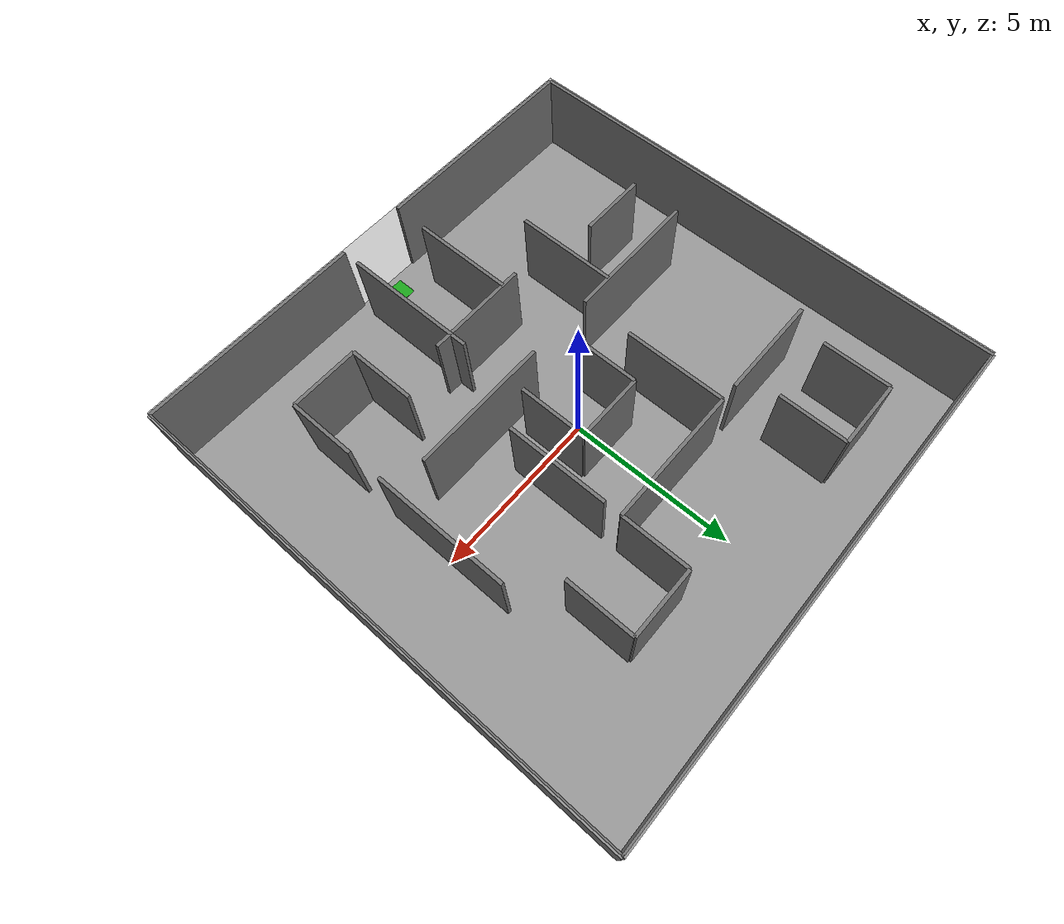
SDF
<?xml version="1.0" ?>

<sdf version="1.9">

<world name="nidar_airmouse_arena">

    <gravity>0 0 -9.81</gravity>

    <plugin
        filename="gz-sim-physics-system"
        name="gz::sim::systems::Physics"/>

    <plugin
        filename="gz-sim-user-commands-system"
        name="gz::sim::systems::UserCommands"/>

    <plugin
        filename="gz-sim-scene-broadcaster-system"
        name="gz::sim::systems::SceneBroadcaster"/>

    <light type="directional" name="sun">
        <pose>0 0 10 0 0 0</pose>
        <cast_shadows>true</cast_shadows>
        <direction>-0.3 0.2 -1.0</direction>
    </light>

    <!-- Ground -->
    <model name="ground">
        <static>true</static>

        <link name="link">

            <collision name="collision">
                <geometry>
                    <box>
                        <size>15 15 0.1</size>
                    </box>
                </geometry>
            </collision>

            <visual name="visual">
                <geometry>
                    <box>
                        <size>15 15 0.1</size>
                    </box>
                </geometry>
            </visual>

        </link>

        <pose>0 0 -0.05 0 0 0</pose>
    </model>

    <model name="outer_wall_north">
        <static>true</static>

        <pose>0 7.5 1.25 0 0 0</pose>

        <link name="link">

            <collision name="collision">
                <geometry>
                    <box>
                        <size>15 0.1 2.5</size>
                    </box>
                </geometry>
            </collision>

            <visual name="visual">
                <geometry>
                    <box>
                        <size>15 0.1 2.5</size>
                    </box>
                </geometry>

                <material>
                    <ambient>0.45 0.45 0.45 1</ambient>
                    <diffuse>0.55 0.55 0.55 1</diffuse>
                </material>
            </visual>

        </link>
    </model>

    <model name="outer_wall_west">
        <static>true</static>

        <pose>-7.5 0 1.25 0 0 0</pose>

        <link name="link">

            <collision name="collision">
                <geometry>
                    <box>
                        <size>0.1 15 2.5</size>
                    </box>
                </geometry>
            </collision>

            <visual name="visual">
                <geometry>
                    <box>
                        <size>0.1 15 2.5</size>
                    </box>
                </geometry>

                <material>
                    <ambient>0.45 0.45 0.45 1</ambient>
                    <diffuse>0.55 0.55 0.55 1</diffuse>
                </material>
            </visual>

        </link>
    </model>

    <model name="outer_wall_east">
        <static>true</static>

        <pose>7.5 0 1.25 0 0 0</pose>

        <link name="link">

            <collision name="collision">
                <geometry>
                    <box>
                        <size>0.1 15 2.5</size>
                    </box>
                </geometry>
            </collision>

            <visual name="visual">
                <geometry>
                    <box>
                        <size>0.1 15 2.5</size>
                    </box>
                </geometry>

                <material>
                    <ambient>0.45 0.45 0.45 1</ambient>
                    <diffuse>0.55 0.55 0.55 1</diffuse>
                </material>
            </visual>

        </link>
    </model>

    <model name="outer_wall_south_left">
        <static>true</static>

        <pose>-4.25 -7.5 1.25 0 0 0</pose>

        <link name="link">

            <collision name="collision">
                <geometry>
                    <box>
                        <size>6.5 0.1 2.5</size>
                    </box>
                </geometry>
            </collision>

            <visual name="visual">
                <geometry>
                    <box>
                        <size>6.5 0.1 2.5</size>
                    </box>
                </geometry>

                <material>
                    <ambient>0.45 0.45 0.45 1</ambient>
                    <diffuse>0.55 0.55 0.55 1</diffuse>
                </material>
            </visual>

        </link>
    </model>

    <model name="outer_wall_south_right">
        <static>true</static>

        <pose>4.25 -7.5 1.25 0 0 0</pose>

        <link name="link">

            <collision name="collision">
                <geometry>
                    <box>
                        <size>6.5 0.1 2.5</size>
                    </box>
                </geometry>
            </collision>

            <visual name="visual">
                <geometry>
                    <box>
                        <size>6.5 0.1 2.5</size>
                    </box>
                </geometry>

                <material>
                    <ambient>0.45 0.45 0.45 1</ambient>
                    <diffuse>0.55 0.55 0.55 1</diffuse>
                </material>
            </visual>

        </link>
    </model>

    <model name="r1_top">
        <static>true</static>

        <pose>-4 6 1.25 0 0 0</pose>

        <link name="link">

            <collision name="collision">
                <geometry>
                    <box>
                        <size>2 0.1 2.5</size>
                    </box>
                </geometry>
            </collision>

            <visual name="visual">
                <geometry>
                    <box>
                        <size>2 0.1 2.5</size>
                    </box>
                </geometry>

                <material>
                    <ambient>0.45 0.45 0.45 1</ambient>
                    <diffuse>0.55 0.55 0.55 1</diffuse>
                </material>
            </visual>

        </link>
    </model>

    <model name="r1_left">
        <static>true</static>

        <pose>-5 5 1.25 0 0 0</pose>

        <link name="link">

            <collision name="collision">
                <geometry>
                    <box>
                        <size>0.1 2 2.5</size>
                    </box>
                </geometry>
            </collision>

            <visual name="visual">
                <geometry>
                    <box>
                        <size>0.1 2 2.5</size>
                    </box>
                </geometry>

                <material>
                    <ambient>0.45 0.45 0.45 1</ambient>
                    <diffuse>0.55 0.55 0.55 1</diffuse>
                </material>
            </visual>

        </link>
    </model>

    <model name="r1_right">
        <static>true</static>

        <pose>-3 5 1.25 0 0 0</pose>

        <link name="link">

            <collision name="collision">
                <geometry>
                    <box>
                        <size>0.1 2 2.5</size>
                    </box>
                </geometry>
            </collision>

            <visual name="visual">
                <geometry>
                    <box>
                        <size>0.1 2 2.5</size>
                    </box>
                </geometry>

                <material>
                    <ambient>0.45 0.45 0.45 1</ambient>
                    <diffuse>0.55 0.55 0.55 1</diffuse>
                </material>
            </visual>

        </link>
    </model>

    <model name="r2_top">
        <static>true</static>

        <pose>3 5 1.25 0 0 0</pose>

        <link name="link">

            <collision name="collision">
                <geometry>
                    <box>
                        <size>2 0.1 2.5</size>
                    </box>
                </geometry>
            </collision>

            <visual name="visual">
                <geometry>
                    <box>
                        <size>2 0.1 2.5</size>
                    </box>
                </geometry>

                <material>
                    <ambient>0.45 0.45 0.45 1</ambient>
                    <diffuse>0.55 0.55 0.55 1</diffuse>
                </material>
            </visual>

        </link>
    </model>

    <model name="r2_left">
        <static>true</static>

        <pose>2 4 1.25 0 0 0</pose>

        <link name="link">

            <collision name="collision">
                <geometry>
                    <box>
                        <size>0.1 2 2.5</size>
                    </box>
                </geometry>
            </collision>

            <visual name="visual">
                <geometry>
                    <box>
                        <size>0.1 2 2.5</size>
                    </box>
                </geometry>

                <material>
                    <ambient>0.45 0.45 0.45 1</ambient>
                    <diffuse>0.55 0.55 0.55 1</diffuse>
                </material>
            </visual>

        </link>
    </model>

    <model name="r2_right">
        <static>true</static>

        <pose>4 4 1.25 0 0 0</pose>

        <link name="link">

            <collision name="collision">
                <geometry>
                    <box>
                        <size>0.1 2 2.5</size>
                    </box>
                </geometry>
            </collision>

            <visual name="visual">
                <geometry>
                    <box>
                        <size>0.1 2 2.5</size>
                    </box>
                </geometry>

                <material>
                    <ambient>0.45 0.45 0.45 1</ambient>
                    <diffuse>0.55 0.55 0.55 1</diffuse>
                </material>
            </visual>

        </link>
    </model>

    <model name="r3_top">
        <static>true</static>

        <pose>0 1 1.25 0 0 0</pose>

        <link name="link">

            <collision name="collision">
                <geometry>
                    <box>
                        <size>2 0.1 2.5</size>
                    </box>
                </geometry>
            </collision>

            <visual name="visual">
                <geometry>
                    <box>
                        <size>2 0.1 2.5</size>
                    </box>
                </geometry>

                <material>
                    <ambient>0.45 0.45 0.45 1</ambient>
                    <diffuse>0.55 0.55 0.55 1</diffuse>
                </material>
            </visual>

        </link>
    </model>

    <model name="r3_left">
        <static>true</static>

        <pose>-1 0 1.25 0 0 0</pose>

        <link name="link">

            <collision name="collision">
                <geometry>
                    <box>
                        <size>0.1 2 2.5</size>
                    </box>
                </geometry>
            </collision>

            <visual name="visual">
                <geometry>
                    <box>
                        <size>0.1 2 2.5</size>
                    </box>
                </geometry>

                <material>
                    <ambient>0.45 0.45 0.45 1</ambient>
                    <diffuse>0.55 0.55 0.55 1</diffuse>
                </material>
            </visual>

        </link>
    </model>

    <model name="r3_right">
        <static>true</static>

        <pose>1 0 1.25 0 0 0</pose>

        <link name="link">

            <collision name="collision">
                <geometry>
                    <box>
                        <size>0.1 2 2.5</size>
                    </box>
                </geometry>
            </collision>

            <visual name="visual">
                <geometry>
                    <box>
                        <size>0.1 2 2.5</size>
                    </box>
                </geometry>

                <material>
                    <ambient>0.45 0.45 0.45 1</ambient>
                    <diffuse>0.55 0.55 0.55 1</diffuse>
                </material>
            </visual>

        </link>
    </model>

    <model name="r4_bottom">
        <static>true</static>

        <pose>4 -5 1.25 0 0 0</pose>

        <link name="link">

            <collision name="collision">
                <geometry>
                    <box>
                        <size>2 0.1 2.5</size>
                    </box>
                </geometry>
            </collision>

            <visual name="visual">
                <geometry>
                    <box>
                        <size>2 0.1 2.5</size>
                    </box>
                </geometry>

                <material>
                    <ambient>0.45 0.45 0.45 1</ambient>
                    <diffuse>0.55 0.55 0.55 1</diffuse>
                </material>
            </visual>

        </link>
    </model>

    <model name="r4_left">
        <static>true</static>

        <pose>3 -4 1.25 0 0 0</pose>

        <link name="link">

            <collision name="collision">
                <geometry>
                    <box>
                        <size>0.1 2 2.5</size>
                    </box>
                </geometry>
            </collision>

            <visual name="visual">
                <geometry>
                    <box>
                        <size>0.1 2 2.5</size>
                    </box>
                </geometry>

                <material>
                    <ambient>0.45 0.45 0.45 1</ambient>
                    <diffuse>0.55 0.55 0.55 1</diffuse>
                </material>
            </visual>

        </link>
    </model>

    <model name="r4_right">
        <static>true</static>

        <pose>5 -4 1.25 0 0 0</pose>

        <link name="link">

            <collision name="collision">
                <geometry>
                    <box>
                        <size>0.1 2 2.5</size>
                    </box>
                </geometry>
            </collision>

            <visual name="visual">
                <geometry>
                    <box>
                        <size>0.1 2 2.5</size>
                    </box>
                </geometry>

                <material>
                    <ambient>0.45 0.45 0.45 1</ambient>
                    <diffuse>0.55 0.55 0.55 1</diffuse>
                </material>
            </visual>

        </link>
    </model>

    <model name="corridor_wall_0">
        <static>true</static>

        <pose>-4 3.0 1.25 0 0 0</pose>

        <link name="link">

            <collision name="collision">
                <geometry>
                    <box>
                        <size>3 0.1 2.5</size>
                    </box>
                </geometry>
            </collision>

            <visual name="visual">
                <geometry>
                    <box>
                        <size>3 0.1 2.5</size>
                    </box>
                </geometry>

                <material>
                    <ambient>0.45 0.45 0.45 1</ambient>
                    <diffuse>0.55 0.55 0.55 1</diffuse>
                </material>
            </visual>

        </link>
    </model>

    <model name="corridor_wall_1">
        <static>true</static>

        <pose>-2 1.5 1.25 0 0 0</pose>

        <link name="link">

            <collision name="collision">
                <geometry>
                    <box>
                        <size>0.1 3 2.5</size>
                    </box>
                </geometry>
            </collision>

            <visual name="visual">
                <geometry>
                    <box>
                        <size>0.1 3 2.5</size>
                    </box>
                </geometry>

                <material>
                    <ambient>0.45 0.45 0.45 1</ambient>
                    <diffuse>0.55 0.55 0.55 1</diffuse>
                </material>
            </visual>

        </link>
    </model>

    <model name="corridor_wall_2">
        <static>true</static>

        <pose>0 3.0 1.25 0 0 0</pose>

        <link name="link">

            <collision name="collision">
                <geometry>
                    <box>
                        <size>4 0.1 2.5</size>
                    </box>
                </geometry>
            </collision>

            <visual name="visual">
                <geometry>
                    <box>
                        <size>4 0.1 2.5</size>
                    </box>
                </geometry>

                <material>
                    <ambient>0.45 0.45 0.45 1</ambient>
                    <diffuse>0.55 0.55 0.55 1</diffuse>
                </material>
            </visual>

        </link>
    </model>

    <model name="corridor_wall_3">
        <static>true</static>

        <pose>2 1.0 1.25 0 0 0</pose>

        <link name="link">

            <collision name="collision">
                <geometry>
                    <box>
                        <size>0.1 3 2.5</size>
                    </box>
                </geometry>
            </collision>

            <visual name="visual">
                <geometry>
                    <box>
                        <size>0.1 3 2.5</size>
                    </box>
                </geometry>

                <material>
                    <ambient>0.45 0.45 0.45 1</ambient>
                    <diffuse>0.55 0.55 0.55 1</diffuse>
                </material>
            </visual>

        </link>
    </model>

    <model name="corridor_wall_4">
        <static>true</static>

        <pose>-4 -1.5 1.25 0 0 0</pose>

        <link name="link">

            <collision name="collision">
                <geometry>
                    <box>
                        <size>4 0.1 2.5</size>
                    </box>
                </geometry>
            </collision>

            <visual name="visual">
                <geometry>
                    <box>
                        <size>4 0.1 2.5</size>
                    </box>
                </geometry>

                <material>
                    <ambient>0.45 0.45 0.45 1</ambient>
                    <diffuse>0.55 0.55 0.55 1</diffuse>
                </material>
            </visual>

        </link>
    </model>

    <model name="corridor_wall_5">
        <static>true</static>

        <pose>-3 -3.0 1.25 0 0 0</pose>

        <link name="link">

            <collision name="collision">
                <geometry>
                    <box>
                        <size>0.1 3 2.5</size>
                    </box>
                </geometry>
            </collision>

            <visual name="visual">
                <geometry>
                    <box>
                        <size>0.1 3 2.5</size>
                    </box>
                </geometry>

                <material>
                    <ambient>0.45 0.45 0.45 1</ambient>
                    <diffuse>0.55 0.55 0.55 1</diffuse>
                </material>
            </visual>

        </link>
    </model>

    <model name="corridor_wall_6">
        <static>true</static>

        <pose>2 -1.5 1.25 0 0 0</pose>

        <link name="link">

            <collision name="collision">
                <geometry>
                    <box>
                        <size>4 0.1 2.5</size>
                    </box>
                </geometry>
            </collision>

            <visual name="visual">
                <geometry>
                    <box>
                        <size>4 0.1 2.5</size>
                    </box>
                </geometry>

                <material>
                    <ambient>0.45 0.45 0.45 1</ambient>
                    <diffuse>0.55 0.55 0.55 1</diffuse>
                </material>
            </visual>

        </link>
    </model>

    <model name="corridor_wall_7">
        <static>true</static>

        <pose>5 0 1.25 0 0 0</pose>

        <link name="link">

            <collision name="collision">
                <geometry>
                    <box>
                        <size>0.1 4 2.5</size>
                    </box>
                </geometry>
            </collision>

            <visual name="visual">
                <geometry>
                    <box>
                        <size>0.1 4 2.5</size>
                    </box>
                </geometry>

                <material>
                    <ambient>0.45 0.45 0.45 1</ambient>
                    <diffuse>0.55 0.55 0.55 1</diffuse>
                </material>
            </visual>

        </link>
    </model>

    <model name="corridor_wall_8">
        <static>true</static>

        <pose>0 -3.5 1.25 0 0 0</pose>

        <link name="link">

            <collision name="collision">
                <geometry>
                    <box>
                        <size>3 0.1 2.5</size>
                    </box>
                </geometry>
            </collision>

            <visual name="visual">
                <geometry>
                    <box>
                        <size>3 0.1 2.5</size>
                    </box>
                </geometry>

                <material>
                    <ambient>0.45 0.45 0.45 1</ambient>
                    <diffuse>0.55 0.55 0.55 1</diffuse>
                </material>
            </visual>

        </link>
    </model>

    <model name="corridor_wall_9">
        <static>true</static>

        <pose>1 -5.0 1.25 0 0 0</pose>

        <link name="link">

            <collision name="collision">
                <geometry>
                    <box>
                        <size>0.1 4 2.5</size>
                    </box>
                </geometry>
            </collision>

            <visual name="visual">
                <geometry>
                    <box>
                        <size>0.1 4 2.5</size>
                    </box>
                </geometry>

                <material>
                    <ambient>0.45 0.45 0.45 1</ambient>
                    <diffuse>0.55 0.55 0.55 1</diffuse>
                </material>
            </visual>

        </link>
    </model>

    <model name="corridor_wall_10">
        <static>true</static>

        <pose>-5 -3.0 1.25 0 0 0</pose>

        <link name="link">

            <collision name="collision">
                <geometry>
                    <box>
                        <size>2 0.1 2.5</size>
                    </box>
                </geometry>
            </collision>

            <visual name="visual">
                <geometry>
                    <box>
                        <size>2 0.1 2.5</size>
                    </box>
                </geometry>

                <material>
                    <ambient>0.45 0.45 0.45 1</ambient>
                    <diffuse>0.55 0.55 0.55 1</diffuse>
                </material>
            </visual>

        </link>
    </model>

    <model name="corridor_wall_11">
        <static>true</static>

        <pose>-1 -5.0 1.25 0 0 0</pose>

        <link name="link">

            <collision name="collision">
                <geometry>
                    <box>
                        <size>0.1 3 2.5</size>
                    </box>
                </geometry>
            </collision>

            <visual name="visual">
                <geometry>
                    <box>
                        <size>0.1 3 2.5</size>
                    </box>
                </geometry>

                <material>
                    <ambient>0.45 0.45 0.45 1</ambient>
                    <diffuse>0.55 0.55 0.55 1</diffuse>
                </material>
            </visual>

        </link>
    </model>

    <model name="entry_exit_marker">

        <static>true</static>

        <pose>0 -7.0 0.005 0 0 0</pose>

        <link name="link">

            <visual name="visual">

                <geometry>
                    <box>
                        <size>0.60 0.60 0.01</size>
                    </box>
                </geometry>

                <material>
                    <ambient>0.1 0.8 0.1 1</ambient>
                    <diffuse>0.1 0.8 0.1 1</diffuse>
                </material>

            </visual>

        </link>

    </model>

    <model name="arena_net">

        <static>true</static>

        <pose>0 0 2.6 0 0 0</pose>

        <link name="link">

            <visual name="visual">

                <geometry>
                    <box>
                        <size>15 15 0.02</size>
                    </box>
                </geometry>

                <material>
                    <ambient>0.15 0.15 0.15 0.25</ambient>
                    <diffuse>0.15 0.15 0.15 0.25</diffuse>
                </material>

            </visual>

        </link>

    </model>

</world>
</sdf>
